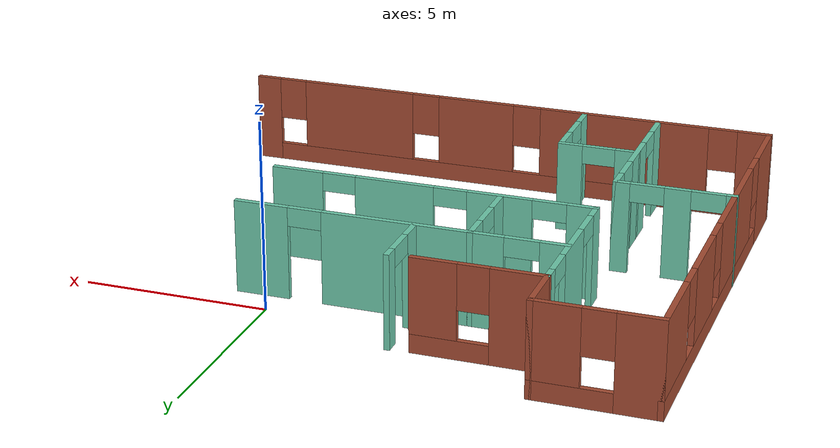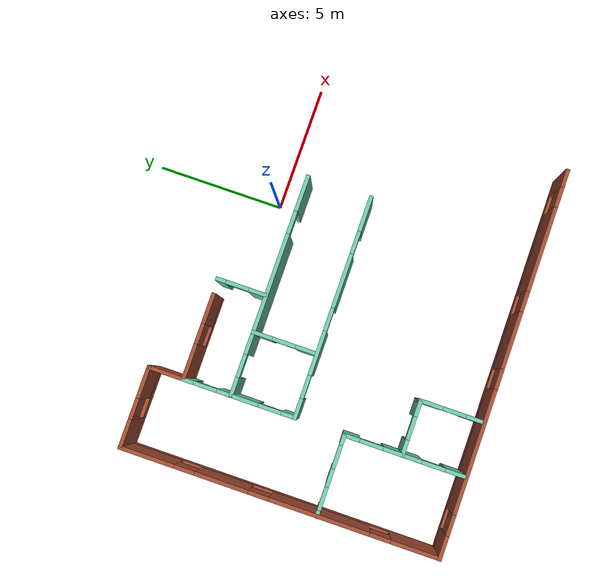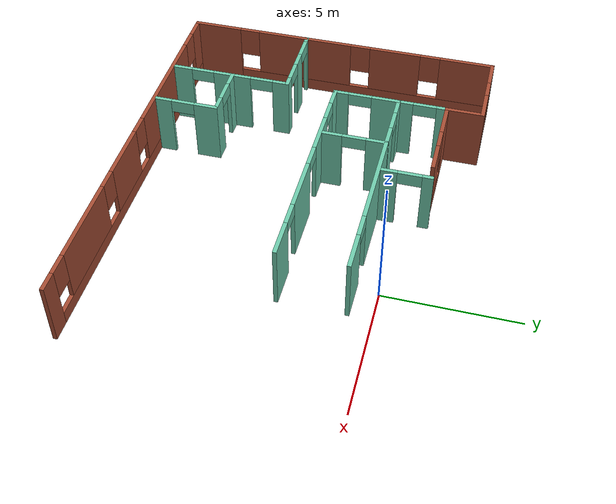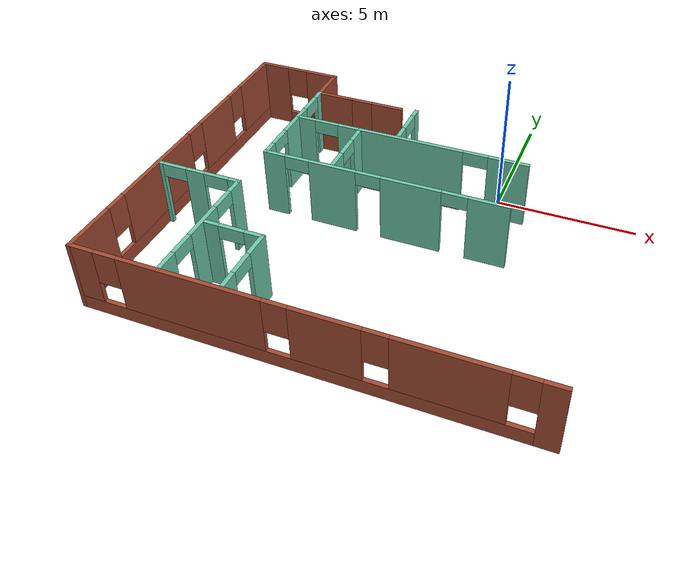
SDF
<sdf version="1.6">
 <model name="my_apartment">
  <pose>-3.10653 -3.79856 0 0 -0 0</pose>
  <link name="Wall_10">
   <pose>-2.79582 4.775 0 0 -0 0</pose>
   <visual name="Wall_10_Visual_0">
    <pose>-1.0014 0 1.25 0 -0 0</pose>
    <geometry><box><size>1.44721 0.15 2.5</size></box></geometry>
    <material>
     <script><uri>file://media/materials/scripts/gazebo.material</uri><name>Gazebo/Bricks</name></script>
     <ambient>0.435294 0.796078 0.67451 1</ambient>
    </material>
    <meta><layer>0</layer></meta>
   </visual>
   <collision name="Wall_10_Collision_0">
    <geometry><box><size>1.44721 0.15 2.5</size></box></geometry>
    <pose>-1.0014 0 1.25 0 -0 0</pose>
   </collision>
   <visual name="Wall_10_Visual_1">
    <pose>0.723602 0 0.25 0 -0 0</pose>
    <geometry><box><size>2.00279 0.15 0.5</size></box></geometry>
    <material>
     <script><uri>file://media/materials/scripts/gazebo.material</uri><name>Gazebo/Bricks</name></script>
     <ambient>0.435294 0.796078 0.67451 1</ambient>
    </material>
    <meta><layer>0</layer></meta>
   </visual>
   <collision name="Wall_10_Collision_1">
    <geometry><box><size>2.00279 0.15 0.5</size></box></geometry>
    <pose>0.723602 0 0.25 0 -0 0</pose>
   </collision>
   <visual name="Wall_10_Visual_2">
    <pose>1.1236 0 1.5 0 -0 0</pose>
    <geometry><box><size>1.2028 0.15 2</size></box></geometry>
    <material>
     <script><uri>file://media/materials/scripts/gazebo.material</uri><name>Gazebo/Bricks</name></script>
     <ambient>0.435294 0.796078 0.67451 1</ambient>
    </material>
    <meta><layer>0</layer></meta>
   </visual>
   <collision name="Wall_10_Collision_2">
    <geometry><box><size>1.2028 0.15 2</size></box></geometry>
    <pose>1.1236 0 1.5 0 -0 0</pose>
   </collision>
   <visual name="Wall_10_Visual_3">
    <pose>0.122205 0 1.9 0 -0 0</pose>
    <geometry><box><size>0.8 0.15 1.2</size></box></geometry>
    <material>
     <script><uri>file://media/materials/scripts/gazebo.material</uri><name>Gazebo/Bricks</name></script>
     <ambient>0.435294 0.796078 0.67451 1</ambient>
    </material>
    <meta><layer>0</layer></meta>
   </visual>
   <collision name="Wall_10_Collision_3">
    <geometry><box><size>0.8 0.15 1.2</size></box></geometry>
    <pose>0.122205 0 1.9 0 -0 0</pose>
   </collision>
  </link>
  <link name="Wall_12">
   <pose>-4.44565 2.59978 0 0 0 -1.57072</pose>
   <visual name="Wall_12_Visual_0">
    <pose>-2.01587 0 1.25 0 -0 0</pose>
    <geometry><box><size>0.468264 0.15 2.5</size></box></geometry>
    <material>
     <script><uri>file://media/materials/scripts/gazebo.material</uri><name>Gazebo/Grey</name></script>
     <ambient>0.435294 0.796078 0.67451 1</ambient>
    </material>
    <meta><layer>0</layer></meta>
   </visual>
   <collision name="Wall_12_Collision_0">
    <geometry><box><size>0.468264 0.15 2.5</size></box></geometry>
    <pose>-2.01587 0 1.25 0 -0 0</pose>
   </collision>
   <visual name="Wall_12_Visual_1">
    <pose>-0.071119 0 1.25 0 -0 0</pose>
    <geometry><box><size>1.62123 0.15 2.5</size></box></geometry>
    <material>
     <script><uri>file://media/materials/scripts/gazebo.material</uri><name>Gazebo/Grey</name></script>
     <ambient>0.435294 0.796078 0.67451 1</ambient>
    </material>
    <meta><layer>0</layer></meta>
   </visual>
   <collision name="Wall_12_Collision_1">
    <geometry><box><size>1.62123 0.15 2.5</size></box></geometry>
    <pose>-0.071119 0 1.25 0 -0 0</pose>
   </collision>
   <visual name="Wall_12_Visual_2">
    <pose>1.94475 0 1.25 0 -0 0</pose>
    <geometry><box><size>0.610503 0.15 2.5</size></box></geometry>
    <material>
     <script><uri>file://media/materials/scripts/gazebo.material</uri><name>Gazebo/Grey</name></script>
     <ambient>0.435294 0.796078 0.67451 1</ambient>
    </material>
    <meta><layer>0</layer></meta>
   </visual>
   <collision name="Wall_12_Collision_2">
    <geometry><box><size>0.610503 0.15 2.5</size></box></geometry>
    <pose>1.94475 0 1.25 0 -0 0</pose>
   </collision>
   <visual name="Wall_12_Visual_3">
    <pose>-1.33174 0 2.25 0 -0 0</pose>
    <geometry><box><size>0.9 0.15 0.5</size></box></geometry>
    <material>
     <script><uri>file://media/materials/scripts/gazebo.material</uri><name>Gazebo/Grey</name></script>
     <ambient>0.435294 0.796078 0.67451 1</ambient>
    </material>
    <meta><layer>0</layer></meta>
   </visual>
   <collision name="Wall_12_Collision_3">
    <geometry><box><size>0.9 0.15 0.5</size></box></geometry>
    <pose>-1.33174 0 2.25 0 -0 0</pose>
   </collision>
   <visual name="Wall_12_Visual_4">
    <pose>1.1895 0 2.25 0 -0 0</pose>
    <geometry><box><size>0.9 0.15 0.5</size></box></geometry>
    <material>
     <script><uri>file://media/materials/scripts/gazebo.material</uri><name>Gazebo/Grey</name></script>
     <ambient>0.435294 0.796078 0.67451 1</ambient>
    </material>
    <meta><layer>0</layer></meta>
   </visual>
   <collision name="Wall_12_Collision_4">
    <geometry><box><size>0.9 0.15 0.5</size></box></geometry>
    <pose>1.1895 0 2.25 0 -0 0</pose>
   </collision>
  </link>
  <link name="Wall_13">
   <pose>-0.120473 0.424565 0 0 -0 0</pose>
   <visual name="Wall_13_Visual_0">
    <pose>-3.99093 0 1.25 0 -0 0</pose>
    <geometry><box><size>0.818142 0.15 2.5</size></box></geometry>
    <material>
     <script><uri>file://media/materials/scripts/gazebo.material</uri><name>Gazebo/Grey</name></script>
     <ambient>0.435294 0.796078 0.67451 1</ambient>
    </material>
    <meta><layer>0</layer></meta>
   </visual>
   <collision name="Wall_13_Collision_0">
    <geometry><box><size>0.818142 0.15 2.5</size></box></geometry>
    <pose>-3.99093 0 1.25 0 -0 0</pose>
   </collision>
   <visual name="Wall_13_Visual_1">
    <pose>-1.8163 0 1.25 0 -0 0</pose>
    <geometry><box><size>1.73111 0.15 2.5</size></box></geometry>
    <material>
     <script><uri>file://media/materials/scripts/gazebo.material</uri><name>Gazebo/Grey</name></script>
     <ambient>0.435294 0.796078 0.67451 1</ambient>
    </material>
    <meta><layer>0</layer></meta>
   </visual>
   <collision name="Wall_13_Collision_1">
    <geometry><box><size>1.73111 0.15 2.5</size></box></geometry>
    <pose>-1.8163 0 1.25 0 -0 0</pose>
   </collision>
   <visual name="Wall_13_Visual_2">
    <pose>1.02013 0 1.25 0 -0 0</pose>
    <geometry><box><size>2.14175 0.15 2.5</size></box></geometry>
    <material>
     <script><uri>file://media/materials/scripts/gazebo.material</uri><name>Gazebo/Grey</name></script>
     <ambient>0.435294 0.796078 0.67451 1</ambient>
    </material>
    <meta><layer>0</layer></meta>
   </visual>
   <collision name="Wall_13_Collision_2">
    <geometry><box><size>2.14175 0.15 2.5</size></box></geometry>
    <pose>1.02013 0 1.25 0 -0 0</pose>
   </collision>
   <visual name="Wall_13_Visual_3">
    <pose>3.6955 0 1.25 0 -0 0</pose>
    <geometry><box><size>1.40899 0.15 2.5</size></box></geometry>
    <material>
     <script><uri>file://media/materials/scripts/gazebo.material</uri><name>Gazebo/Grey</name></script>
     <ambient>0.435294 0.796078 0.67451 1</ambient>
    </material>
    <meta><layer>0</layer></meta>
   </visual>
   <collision name="Wall_13_Collision_3">
    <geometry><box><size>1.40899 0.15 2.5</size></box></geometry>
    <pose>3.6955 0 1.25 0 -0 0</pose>
   </collision>
   <visual name="Wall_13_Visual_4">
    <pose>-3.13186 0 2.25 0 -0 0</pose>
    <geometry><box><size>0.9 0.15 0.5</size></box></geometry>
    <material>
     <script><uri>file://media/materials/scripts/gazebo.material</uri><name>Gazebo/Grey</name></script>
     <ambient>0.435294 0.796078 0.67451 1</ambient>
    </material>
    <meta><layer>0</layer></meta>
   </visual>
   <collision name="Wall_13_Collision_4">
    <geometry><box><size>0.9 0.15 0.5</size></box></geometry>
    <pose>-3.13186 0 2.25 0 -0 0</pose>
   </collision>
   <visual name="Wall_13_Visual_5">
    <pose>-0.500745 0 2.25 0 -0 0</pose>
    <geometry><box><size>0.9 0.15 0.5</size></box></geometry>
    <material>
     <script><uri>file://media/materials/scripts/gazebo.material</uri><name>Gazebo/Grey</name></script>
     <ambient>0.435294 0.796078 0.67451 1</ambient>
    </material>
    <meta><layer>0</layer></meta>
   </visual>
   <collision name="Wall_13_Collision_5">
    <geometry><box><size>0.9 0.15 0.5</size></box></geometry>
    <pose>-0.500745 0 2.25 0 -0 0</pose>
   </collision>
   <visual name="Wall_13_Visual_6">
    <pose>2.54101 0 2.25 0 -0 0</pose>
    <geometry><box><size>0.9 0.15 0.5</size></box></geometry>
    <material>
     <script><uri>file://media/materials/scripts/gazebo.material</uri><name>Gazebo/Grey</name></script>
     <ambient>0.435294 0.796078 0.67451 1</ambient>
    </material>
    <meta><layer>0</layer></meta>
   </visual>
   <collision name="Wall_13_Collision_6">
    <geometry><box><size>0.9 0.15 0.5</size></box></geometry>
    <pose>2.54101 0 2.25 0 -0 0</pose>
   </collision>
  </link>
  <link name="Wall_19">
   <pose>-0.118146 2.91521 0 0 -0 0</pose>
   <visual name="Wall_19_Visual_0">
    <pose>-3.9948 0 1.25 0 -0 0</pose>
    <geometry><box><size>0.760398 0.15 2.5</size></box></geometry>
    <material>
     <script><uri>file://media/materials/scripts/gazebo.material</uri><name>Gazebo/Grey</name></script>
     <ambient>0.435294 0.796078 0.67451 1</ambient>
    </material>
    <meta><layer>0</layer></meta>
   </visual>
   <collision name="Wall_19_Collision_0">
    <geometry><box><size>0.760398 0.15 2.5</size></box></geometry>
    <pose>-3.9948 0 1.25 0 -0 0</pose>
   </collision>
   <visual name="Wall_19_Visual_1">
    <pose>-0.343379 0 1.25 0 -0 0</pose>
    <geometry><box><size>4.74245 0.15 2.5</size></box></geometry>
    <material>
     <script><uri>file://media/materials/scripts/gazebo.material</uri><name>Gazebo/Grey</name></script>
     <ambient>0.435294 0.796078 0.67451 1</ambient>
    </material>
    <meta><layer>0</layer></meta>
   </visual>
   <collision name="Wall_19_Collision_1">
    <geometry><box><size>4.74245 0.15 2.5</size></box></geometry>
    <pose>-0.343379 0 1.25 0 -0 0</pose>
   </collision>
   <visual name="Wall_19_Visual_2">
    <pose>3.65142 0 1.25 0 -0 0</pose>
    <geometry><box><size>1.44716 0.15 2.5</size></box></geometry>
    <material>
     <script><uri>file://media/materials/scripts/gazebo.material</uri><name>Gazebo/Grey</name></script>
     <ambient>0.435294 0.796078 0.67451 1</ambient>
    </material>
    <meta><layer>0</layer></meta>
   </visual>
   <collision name="Wall_19_Collision_2">
    <geometry><box><size>1.44716 0.15 2.5</size></box></geometry>
    <pose>3.65142 0 1.25 0 -0 0</pose>
   </collision>
   <visual name="Wall_19_Visual_3">
    <pose>-3.1646 0 2.25 0 -0 0</pose>
    <geometry><box><size>0.9 0.15 0.5</size></box></geometry>
    <material>
     <script><uri>file://media/materials/scripts/gazebo.material</uri><name>Gazebo/Grey</name></script>
     <ambient>0.435294 0.796078 0.67451 1</ambient>
    </material>
    <meta><layer>0</layer></meta>
   </visual>
   <collision name="Wall_19_Collision_3">
    <geometry><box><size>0.9 0.15 0.5</size></box></geometry>
    <pose>-3.1646 0 2.25 0 -0 0</pose>
   </collision>
   <visual name="Wall_19_Visual_4">
    <pose>2.47784 0 2.25 0 -0 0</pose>
    <geometry><box><size>0.9 0.15 0.5</size></box></geometry>
    <material>
     <script><uri>file://media/materials/scripts/gazebo.material</uri><name>Gazebo/Grey</name></script>
     <ambient>0.435294 0.796078 0.67451 1</ambient>
    </material>
    <meta><layer>0</layer></meta>
   </visual>
   <collision name="Wall_19_Collision_4">
    <geometry><box><size>0.9 0.15 0.5</size></box></geometry>
    <pose>2.47784 0 2.25 0 -0 0</pose>
   </collision>
  </link>
  <link name="Wall_21">
   <pose>-1.97093 1.74021 0 0 0 -1.5708</pose>
   <visual name="Wall_21_Visual_0">
    <pose>-0.835388 0 1.25 0 -0 0</pose>
    <geometry><box><size>0.829225 0.15 2.5</size></box></geometry>
    <material>
     <script><uri>file://media/materials/scripts/gazebo.material</uri><name>Gazebo/Grey</name></script>
     <ambient>0.435294 0.796078 0.67451 1</ambient>
    </material>
    <meta><layer>0</layer></meta>
   </visual>
   <collision name="Wall_21_Collision_0">
    <geometry><box><size>0.829225 0.15 2.5</size></box></geometry>
    <pose>-0.835388 0 1.25 0 -0 0</pose>
   </collision>
   <visual name="Wall_21_Visual_1">
    <pose>0.864612 0 1.25 0 -0 0</pose>
    <geometry><box><size>0.770775 0.15 2.5</size></box></geometry>
    <material>
     <script><uri>file://media/materials/scripts/gazebo.material</uri><name>Gazebo/Grey</name></script>
     <ambient>0.435294 0.796078 0.67451 1</ambient>
    </material>
    <meta><layer>0</layer></meta>
   </visual>
   <collision name="Wall_21_Collision_1">
    <geometry><box><size>0.770775 0.15 2.5</size></box></geometry>
    <pose>0.864612 0 1.25 0 -0 0</pose>
   </collision>
   <visual name="Wall_21_Visual_2">
    <pose>0.029225 0 2.25 0 -0 0</pose>
    <geometry><box><size>0.9 0.15 0.5</size></box></geometry>
    <material>
     <script><uri>file://media/materials/scripts/gazebo.material</uri><name>Gazebo/Grey</name></script>
     <ambient>0.435294 0.796078 0.67451 1</ambient>
    </material>
    <meta><layer>0</layer></meta>
   </visual>
   <collision name="Wall_21_Collision_2">
    <geometry><box><size>0.9 0.15 0.5</size></box></geometry>
    <pose>0.029225 0 2.25 0 -0 0</pose>
   </collision>
  </link>
  <link name="Wall_25">
   <pose>-0.533187 3.90139 0 0 -0 1.5708</pose>
   <visual name="Wall_25_Visual_0">
    <pose>-0.652107 0 1.25 0 -0 0</pose>
    <geometry><box><size>0.695786 0.15 2.5</size></box></geometry>
    <material>
     <script><uri>file://media/materials/scripts/gazebo.material</uri><name>Gazebo/Grey</name></script>
     <ambient>0.435294 0.796078 0.67451 1</ambient>
    </material>
    <meta><layer>0</layer></meta>
   </visual>
   <collision name="Wall_25_Collision_0">
    <geometry><box><size>0.695786 0.15 2.5</size></box></geometry>
    <pose>-0.652107 0 1.25 0 -0 0</pose>
   </collision>
   <visual name="Wall_25_Visual_1">
    <pose>0.797893 0 1.25 0 -0 0</pose>
    <geometry><box><size>0.404214 0.15 2.5</size></box></geometry>
    <material>
     <script><uri>file://media/materials/scripts/gazebo.material</uri><name>Gazebo/Grey</name></script>
     <ambient>0.435294 0.796078 0.67451 1</ambient>
    </material>
    <meta><layer>0</layer></meta>
   </visual>
   <collision name="Wall_25_Collision_1">
    <geometry><box><size>0.404214 0.15 2.5</size></box></geometry>
    <pose>0.797893 0 1.25 0 -0 0</pose>
   </collision>
   <visual name="Wall_25_Visual_2">
    <pose>0.145786 0 2.25 0 -0 0</pose>
    <geometry><box><size>0.9 0.15 0.5</size></box></geometry>
    <material>
     <script><uri>file://media/materials/scripts/gazebo.material</uri><name>Gazebo/Grey</name></script>
     <ambient>0.435294 0.796078 0.67451 1</ambient>
    </material>
    <meta><layer>0</layer></meta>
   </visual>
   <collision name="Wall_25_Collision_2">
    <geometry><box><size>0.9 0.15 0.5</size></box></geometry>
    <pose>0.145786 0 2.25 0 -0 0</pose>
   </collision>
  </link>
  <link name="Wall_41">
   <pose>-6.00418 -1.50417 0 0 -0 0</pose>
   <visual name="Wall_41_Visual_0">
    <pose>-1.47711 0 1.25 0 -0 0</pose>
    <geometry><box><size>0.295788 0.15 2.5</size></box></geometry>
    <material>
     <script><uri>file://media/materials/scripts/gazebo.material</uri><name>Gazebo/Grey</name></script>
     <ambient>0.435294 0.796078 0.67451 1</ambient>
    </material>
    <meta><layer>0</layer></meta>
   </visual>
   <collision name="Wall_41_Collision_0">
    <geometry><box><size>0.295788 0.15 2.5</size></box></geometry>
    <pose>-1.47711 0 1.25 0 -0 0</pose>
   </collision>
   <visual name="Wall_41_Visual_1">
    <pose>-0.081206 0 1.25 0 -0 0</pose>
    <geometry><box><size>0.696012 0.15 2.5</size></box></geometry>
    <material>
     <script><uri>file://media/materials/scripts/gazebo.material</uri><name>Gazebo/Grey</name></script>
     <ambient>0.435294 0.796078 0.67451 1</ambient>
    </material>
    <meta><layer>0</layer></meta>
   </visual>
   <collision name="Wall_41_Collision_1">
    <geometry><box><size>0.696012 0.15 2.5</size></box></geometry>
    <pose>-0.081206 0 1.25 0 -0 0</pose>
   </collision>
   <visual name="Wall_41_Visual_2">
    <pose>1.3959 0 1.25 0 -0 0</pose>
    <geometry><box><size>0.4582 0.15 2.5</size></box></geometry>
    <material>
     <script><uri>file://media/materials/scripts/gazebo.material</uri><name>Gazebo/Grey</name></script>
     <ambient>0.435294 0.796078 0.67451 1</ambient>
    </material>
    <meta><layer>0</layer></meta>
   </visual>
   <collision name="Wall_41_Collision_2">
    <geometry><box><size>0.4582 0.15 2.5</size></box></geometry>
    <pose>1.3959 0 1.25 0 -0 0</pose>
   </collision>
   <visual name="Wall_41_Visual_3">
    <pose>-0.879212 0 2.25 0 -0 0</pose>
    <geometry><box><size>0.9 0.15 0.5</size></box></geometry>
    <material>
     <script><uri>file://media/materials/scripts/gazebo.material</uri><name>Gazebo/Grey</name></script>
     <ambient>0.435294 0.796078 0.67451 1</ambient>
    </material>
    <meta><layer>0</layer></meta>
   </visual>
   <collision name="Wall_41_Collision_3">
    <geometry><box><size>0.9 0.15 0.5</size></box></geometry>
    <pose>-0.879212 0 2.25 0 -0 0</pose>
   </collision>
   <visual name="Wall_41_Visual_4">
    <pose>0.7168 0 2.25 0 -0 0</pose>
    <geometry><box><size>0.9 0.15 0.5</size></box></geometry>
    <material>
     <script><uri>file://media/materials/scripts/gazebo.material</uri><name>Gazebo/Grey</name></script>
     <ambient>0.435294 0.796078 0.67451 1</ambient>
    </material>
    <meta><layer>0</layer></meta>
   </visual>
   <collision name="Wall_41_Collision_4">
    <geometry><box><size>0.9 0.15 0.5</size></box></geometry>
    <pose>0.7168 0 2.25 0 -0 0</pose>
   </collision>
  </link>
  <link name="Wall_42">
   <pose>-4.45418 -3.80417 0 0 0 -1.5708</pose>
   <visual name="Wall_42_Visual_0">
    <pose>-2.04206 0 1.25 0 -0 0</pose>
    <geometry><box><size>0.665877 0.15 2.5</size></box></geometry>
    <material>
     <script><uri>file://media/materials/scripts/gazebo.material</uri><name>Gazebo/Grey</name></script>
     <ambient>0.435294 0.796078 0.67451 1</ambient>
    </material>
    <meta><layer>0</layer></meta>
   </visual>
   <collision name="Wall_42_Collision_0">
    <geometry><box><size>0.665877 0.15 2.5</size></box></geometry>
    <pose>-2.04206 0 1.25 0 -0 0</pose>
   </collision>
   <visual name="Wall_42_Visual_1">
    <pose>-0.056331 0 1.25 0 -0 0</pose>
    <geometry><box><size>1.50558 0.15 2.5</size></box></geometry>
    <material>
     <script><uri>file://media/materials/scripts/gazebo.material</uri><name>Gazebo/Grey</name></script>
     <ambient>0.435294 0.796078 0.67451 1</ambient>
    </material>
    <meta><layer>0</layer></meta>
   </visual>
   <collision name="Wall_42_Collision_1">
    <geometry><box><size>1.50558 0.15 2.5</size></box></geometry>
    <pose>-0.056331 0 1.25 0 -0 0</pose>
   </collision>
   <visual name="Wall_42_Visual_2">
    <pose>1.98573 0 1.25 0 -0 0</pose>
    <geometry><box><size>0.778539 0.15 2.5</size></box></geometry>
    <material>
     <script><uri>file://media/materials/scripts/gazebo.material</uri><name>Gazebo/Grey</name></script>
     <ambient>0.435294 0.796078 0.67451 1</ambient>
    </material>
    <meta><layer>0</layer></meta>
   </visual>
   <collision name="Wall_42_Collision_2">
    <geometry><box><size>0.778539 0.15 2.5</size></box></geometry>
    <pose>1.98573 0 1.25 0 -0 0</pose>
   </collision>
   <visual name="Wall_42_Visual_3">
    <pose>-1.25912 0 2.25 0 -0 0</pose>
    <geometry><box><size>0.9 0.15 0.5</size></box></geometry>
    <material>
     <script><uri>file://media/materials/scripts/gazebo.material</uri><name>Gazebo/Grey</name></script>
     <ambient>0.435294 0.796078 0.67451 1</ambient>
    </material>
    <meta><layer>0</layer></meta>
   </visual>
   <collision name="Wall_42_Collision_3">
    <geometry><box><size>0.9 0.15 0.5</size></box></geometry>
    <pose>-1.25912 0 2.25 0 -0 0</pose>
   </collision>
   <visual name="Wall_42_Visual_4">
    <pose>1.14646 0 2.25 0 -0 0</pose>
    <geometry><box><size>0.9 0.15 0.5</size></box></geometry>
    <material>
     <script><uri>file://media/materials/scripts/gazebo.material</uri><name>Gazebo/Grey</name></script>
     <ambient>0.435294 0.796078 0.67451 1</ambient>
    </material>
    <meta><layer>0</layer></meta>
   </visual>
   <collision name="Wall_42_Collision_4">
    <geometry><box><size>0.9 0.15 0.5</size></box></geometry>
    <pose>1.14646 0 2.25 0 -0 0</pose>
   </collision>
  </link>
  <link name="Wall_44">
   <pose>-3.40468 -3.74784 0 0 -0 0</pose>
   <visual name="Wall_44_Visual_0">
    <pose>-0.792061 0 1.25 0 -0 0</pose>
    <geometry><box><size>0.665877 0.15 2.5</size></box></geometry>
    <material>
     <script><uri>file://media/materials/scripts/gazebo.material</uri><name>Gazebo/Grey</name></script>
     <ambient>0.435294 0.796078 0.67451 1</ambient>
    </material>
    <meta><layer>0</layer></meta>
   </visual>
   <collision name="Wall_44_Collision_0">
    <geometry><box><size>0.665877 0.15 2.5</size></box></geometry>
    <pose>-0.792061 0 1.25 0 -0 0</pose>
   </collision>
   <visual name="Wall_44_Visual_1">
    <pose>0.782939 0 1.25 0 -0 0</pose>
    <geometry><box><size>0.684123 0.15 2.5</size></box></geometry>
    <material>
     <script><uri>file://media/materials/scripts/gazebo.material</uri><name>Gazebo/Grey</name></script>
     <ambient>0.435294 0.796078 0.67451 1</ambient>
    </material>
    <meta><layer>0</layer></meta>
   </visual>
   <collision name="Wall_44_Collision_1">
    <geometry><box><size>0.684123 0.15 2.5</size></box></geometry>
    <pose>0.782939 0 1.25 0 -0 0</pose>
   </collision>
   <visual name="Wall_44_Visual_2">
    <pose>-0.009123 0 2.25 0 -0 0</pose>
    <geometry><box><size>0.9 0.15 0.5</size></box></geometry>
    <material>
     <script><uri>file://media/materials/scripts/gazebo.material</uri><name>Gazebo/Grey</name></script>
     <ambient>0.435294 0.796078 0.67451 1</ambient>
    </material>
    <meta><layer>0</layer></meta>
   </visual>
   <collision name="Wall_44_Collision_2">
    <geometry><box><size>0.9 0.15 0.5</size></box></geometry>
    <pose>-0.009123 0 2.25 0 -0 0</pose>
   </collision>
  </link>
  <link name="Wall_45">
   <pose>-2.35468 -4.92284 0 0 0 -1.5708</pose>
   <visual name="Wall_45_Visual_0">
    <pose>-0.778277 0 1.25 0 -0 0</pose>
    <geometry><box><size>0.943445 0.15 2.5</size></box></geometry>
    <material>
     <script><uri>file://media/materials/scripts/gazebo.material</uri><name>Gazebo/Grey</name></script>
     <ambient>0.435294 0.796078 0.67451 1</ambient>
    </material>
    <meta><layer>0</layer></meta>
   </visual>
   <collision name="Wall_45_Collision_0">
    <geometry><box><size>0.943445 0.15 2.5</size></box></geometry>
    <pose>-0.778277 0 1.25 0 -0 0</pose>
   </collision>
   <visual name="Wall_45_Visual_1">
    <pose>0.921723 0 1.25 0 -0 0</pose>
    <geometry><box><size>0.656555 0.15 2.5</size></box></geometry>
    <material>
     <script><uri>file://media/materials/scripts/gazebo.material</uri><name>Gazebo/Grey</name></script>
     <ambient>0.435294 0.796078 0.67451 1</ambient>
    </material>
    <meta><layer>0</layer></meta>
   </visual>
   <collision name="Wall_45_Collision_1">
    <geometry><box><size>0.656555 0.15 2.5</size></box></geometry>
    <pose>0.921723 0 1.25 0 -0 0</pose>
   </collision>
   <visual name="Wall_45_Visual_2">
    <pose>0.143445 0 2.25 0 -0 0</pose>
    <geometry><box><size>0.9 0.15 0.5</size></box></geometry>
    <material>
     <script><uri>file://media/materials/scripts/gazebo.material</uri><name>Gazebo/Grey</name></script>
     <ambient>0.435294 0.796078 0.67451 1</ambient>
    </material>
    <meta><layer>0</layer></meta>
   </visual>
   <collision name="Wall_45_Collision_2">
    <geometry><box><size>0.9 0.15 0.5</size></box></geometry>
    <pose>0.143445 0 2.25 0 -0 0</pose>
   </collision>
  </link>
  <link name="Wall_6">
   <pose>0.004176 -6.225 0 0 -0 3.14159</pose>
   <visual name="Wall_6_Visual_0">
    <pose>-7.26503 0 1.25 0 -0 0</pose>
    <geometry><box><size>0.719944 0.15 2.5</size></box></geometry>
    <material>
     <script><uri>file://media/materials/scripts/gazebo.material</uri><name>Gazebo/Bricks</name></script>
     <ambient>0.435294 0.796078 0.67451 1</ambient>
    </material>
    <meta><layer>0</layer></meta>
   </visual>
   <collision name="Wall_6_Collision_0">
    <geometry><box><size>0.719944 0.15 2.5</size></box></geometry>
    <pose>-7.26503 0 1.25 0 -0 0</pose>
   </collision>
   <visual name="Wall_6_Visual_1">
    <pose>0.359972 0 0.25 0 -0 0</pose>
    <geometry><box><size>14.5301 0.15 0.5</size></box></geometry>
    <material>
     <script><uri>file://media/materials/scripts/gazebo.material</uri><name>Gazebo/Bricks</name></script>
     <ambient>0.435294 0.796078 0.67451 1</ambient>
    </material>
    <meta><layer>0</layer></meta>
   </visual>
   <collision name="Wall_6_Collision_1">
    <geometry><box><size>14.5301 0.15 0.5</size></box></geometry>
    <pose>0.359972 0 0.25 0 -0 0</pose>
   </collision>
   <visual name="Wall_6_Visual_2">
    <pose>-4.43487 0 1.5 0 -0 0</pose>
    <geometry><box><size>3.34038 0.15 2</size></box></geometry>
    <material>
     <script><uri>file://media/materials/scripts/gazebo.material</uri><name>Gazebo/Bricks</name></script>
     <ambient>0.435294 0.796078 0.67451 1</ambient>
    </material>
    <meta><layer>0</layer></meta>
   </visual>
   <collision name="Wall_6_Collision_2">
    <geometry><box><size>3.34038 0.15 2</size></box></geometry>
    <pose>-4.43487 0 1.5 0 -0 0</pose>
   </collision>
   <visual name="Wall_6_Visual_3">
    <pose>-0.849622 0 1.5 0 -0 0</pose>
    <geometry><box><size>2.23011 0.15 2</size></box></geometry>
    <material>
     <script><uri>file://media/materials/scripts/gazebo.material</uri><name>Gazebo/Bricks</name></script>
     <ambient>0.435294 0.796078 0.67451 1</ambient>
    </material>
    <meta><layer>0</layer></meta>
   </visual>
   <collision name="Wall_6_Collision_3">
    <geometry><box><size>2.23011 0.15 2</size></box></geometry>
    <pose>-0.849622 0 1.5 0 -0 0</pose>
   </collision>
   <visual name="Wall_6_Visual_4">
    <pose>3.4758 0 1.5 0 -0 0</pose>
    <geometry><box><size>4.82074 0.15 2</size></box></geometry>
    <material>
     <script><uri>file://media/materials/scripts/gazebo.material</uri><name>Gazebo/Bricks</name></script>
     <ambient>0.435294 0.796078 0.67451 1</ambient>
    </material>
    <meta><layer>0</layer></meta>
   </visual>
   <collision name="Wall_6_Collision_4">
    <geometry><box><size>4.82074 0.15 2</size></box></geometry>
    <pose>3.4758 0 1.5 0 -0 0</pose>
   </collision>
   <visual name="Wall_6_Visual_5">
    <pose>7.15559 0 1.5 0 -0 0</pose>
    <geometry><box><size>0.93883 0.15 2</size></box></geometry>
    <material>
     <script><uri>file://media/materials/scripts/gazebo.material</uri><name>Gazebo/Bricks</name></script>
     <ambient>0.435294 0.796078 0.67451 1</ambient>
    </material>
    <meta><layer>0</layer></meta>
   </visual>
   <collision name="Wall_6_Collision_5">
    <geometry><box><size>0.93883 0.15 2</size></box></geometry>
    <pose>7.15559 0 1.5 0 -0 0</pose>
   </collision>
   <visual name="Wall_6_Visual_6">
    <pose>-6.50506 0 1.9 0 -0 0</pose>
    <geometry><box><size>0.8 0.15 1.2</size></box></geometry>
    <material>
     <script><uri>file://media/materials/scripts/gazebo.material</uri><name>Gazebo/Bricks</name></script>
     <ambient>0.435294 0.796078 0.67451 1</ambient>
    </material>
    <meta><layer>0</layer></meta>
   </visual>
   <collision name="Wall_6_Collision_6">
    <geometry><box><size>0.8 0.15 1.2</size></box></geometry>
    <pose>-6.50506 0 1.9 0 -0 0</pose>
   </collision>
   <visual name="Wall_6_Visual_7">
    <pose>-2.36468 0 1.9 0 -0 0</pose>
    <geometry><box><size>0.8 0.15 1.2</size></box></geometry>
    <material>
     <script><uri>file://media/materials/scripts/gazebo.material</uri><name>Gazebo/Bricks</name></script>
     <ambient>0.435294 0.796078 0.67451 1</ambient>
    </material>
    <meta><layer>0</layer></meta>
   </visual>
   <collision name="Wall_6_Collision_7">
    <geometry><box><size>0.8 0.15 1.2</size></box></geometry>
    <pose>-2.36468 0 1.9 0 -0 0</pose>
   </collision>
   <visual name="Wall_6_Visual_8">
    <pose>0.665433 0 1.9 0 -0 0</pose>
    <geometry><box><size>0.8 0.15 1.2</size></box></geometry>
    <material>
     <script><uri>file://media/materials/scripts/gazebo.material</uri><name>Gazebo/Bricks</name></script>
     <ambient>0.435294 0.796078 0.67451 1</ambient>
    </material>
    <meta><layer>0</layer></meta>
   </visual>
   <collision name="Wall_6_Collision_8">
    <geometry><box><size>0.8 0.15 1.2</size></box></geometry>
    <pose>0.665433 0 1.9 0 -0 0</pose>
   </collision>
   <visual name="Wall_6_Visual_9">
    <pose>6.28617 0 1.9 0 -0 0</pose>
    <geometry><box><size>0.8 0.15 1.2</size></box></geometry>
    <material>
     <script><uri>file://media/materials/scripts/gazebo.material</uri><name>Gazebo/Bricks</name></script>
     <ambient>0.435294 0.796078 0.67451 1</ambient>
    </material>
    <meta><layer>0</layer></meta>
   </visual>
   <collision name="Wall_6_Collision_9">
    <geometry><box><size>0.8 0.15 1.2</size></box></geometry>
    <pose>6.28617 0 1.9 0 -0 0</pose>
   </collision>
  </link>
  <link name="Wall_7">
   <pose>-7.54582 -0.05 0 0 -0 1.5708</pose>
   <visual name="Wall_7_Visual_0">
    <pose>-5.26644 0 1.25 0 -0 0</pose>
    <geometry><box><size>1.96711 0.15 2.5</size></box></geometry>
    <material>
     <script><uri>file://media/materials/scripts/gazebo.material</uri><name>Gazebo/Bricks</name></script>
     <ambient>0.435294 0.796078 0.67451 1</ambient>
    </material>
    <meta><layer>0</layer></meta>
   </visual>
   <collision name="Wall_7_Collision_0">
    <geometry><box><size>1.96711 0.15 2.5</size></box></geometry>
    <pose>-5.26644 0 1.25 0 -0 0</pose>
   </collision>
   <visual name="Wall_7_Visual_1">
    <pose>0.983556 0 0.25 0 -0 0</pose>
    <geometry><box><size>10.5329 0.15 0.5</size></box></geometry>
    <material>
     <script><uri>file://media/materials/scripts/gazebo.material</uri><name>Gazebo/Bricks</name></script>
     <ambient>0.435294 0.796078 0.67451 1</ambient>
    </material>
    <meta><layer>0</layer></meta>
   </visual>
   <collision name="Wall_7_Collision_1">
    <geometry><box><size>10.5329 0.15 0.5</size></box></geometry>
    <pose>0.983556 0 0.25 0 -0 0</pose>
   </collision>
   <visual name="Wall_7_Visual_2">
    <pose>-1.53513 0 1.5 0 -0 0</pose>
    <geometry><box><size>3.89551 0.15 2</size></box></geometry>
    <material>
     <script><uri>file://media/materials/scripts/gazebo.material</uri><name>Gazebo/Bricks</name></script>
     <ambient>0.435294 0.796078 0.67451 1</ambient>
    </material>
    <meta><layer>0</layer></meta>
   </visual>
   <collision name="Wall_7_Collision_2">
    <geometry><box><size>3.89551 0.15 2</size></box></geometry>
    <pose>-1.53513 0 1.5 0 -0 0</pose>
   </collision>
   <visual name="Wall_7_Visual_3">
    <pose>2.24672 0 1.5 0 -0 0</pose>
    <geometry><box><size>2.06819 0.15 2</size></box></geometry>
    <material>
     <script><uri>file://media/materials/scripts/gazebo.material</uri><name>Gazebo/Bricks</name></script>
     <ambient>0.435294 0.796078 0.67451 1</ambient>
    </material>
    <meta><layer>0</layer></meta>
   </visual>
   <collision name="Wall_7_Collision_3">
    <geometry><box><size>2.06819 0.15 2</size></box></geometry>
    <pose>2.24672 0 1.5 0 -0 0</pose>
   </collision>
   <visual name="Wall_7_Visual_4">
    <pose>5.16541 0 1.5 0 -0 0</pose>
    <geometry><box><size>2.16918 0.15 2</size></box></geometry>
    <material>
     <script><uri>file://media/materials/scripts/gazebo.material</uri><name>Gazebo/Bricks</name></script>
     <ambient>0.435294 0.796078 0.67451 1</ambient>
    </material>
    <meta><layer>0</layer></meta>
   </visual>
   <collision name="Wall_7_Collision_4">
    <geometry><box><size>2.16918 0.15 2</size></box></geometry>
    <pose>5.16541 0 1.5 0 -0 0</pose>
   </collision>
   <visual name="Wall_7_Visual_5">
    <pose>-3.88289 0 1.9 0 -0 0</pose>
    <geometry><box><size>0.8 0.15 1.2</size></box></geometry>
    <material>
     <script><uri>file://media/materials/scripts/gazebo.material</uri><name>Gazebo/Bricks</name></script>
     <ambient>0.435294 0.796078 0.67451 1</ambient>
    </material>
    <meta><layer>0</layer></meta>
   </visual>
   <collision name="Wall_7_Collision_5">
    <geometry><box><size>0.8 0.15 1.2</size></box></geometry>
    <pose>-3.88289 0 1.9 0 -0 0</pose>
   </collision>
   <visual name="Wall_7_Visual_6">
    <pose>0.812626 0 1.9 0 -0 0</pose>
    <geometry><box><size>0.8 0.15 1.2</size></box></geometry>
    <material>
     <script><uri>file://media/materials/scripts/gazebo.material</uri><name>Gazebo/Bricks</name></script>
     <ambient>0.435294 0.796078 0.67451 1</ambient>
    </material>
    <meta><layer>0</layer></meta>
   </visual>
   <collision name="Wall_7_Collision_6">
    <geometry><box><size>0.8 0.15 1.2</size></box></geometry>
    <pose>0.812626 0 1.9 0 -0 0</pose>
   </collision>
   <visual name="Wall_7_Visual_7">
    <pose>3.68082 0 1.9 0 -0 0</pose>
    <geometry><box><size>0.8 0.15 1.2</size></box></geometry>
    <material>
     <script><uri>file://media/materials/scripts/gazebo.material</uri><name>Gazebo/Bricks</name></script>
     <ambient>0.435294 0.796078 0.67451 1</ambient>
    </material>
    <meta><layer>0</layer></meta>
   </visual>
   <collision name="Wall_7_Collision_7">
    <geometry><box><size>0.8 0.15 1.2</size></box></geometry>
    <pose>3.68082 0 1.9 0 -0 0</pose>
   </collision>
  </link>
  <link name="Wall_8">
   <pose>-5.99582 6.125 0 0 -0 0</pose>
   <visual name="Wall_8_Visual_0">
    <pose>-1.03993 0 1.25 0 -0 0</pose>
    <geometry><box><size>1.17014 0.15 2.5</size></box></geometry>
    <material>
     <script><uri>file://media/materials/scripts/gazebo.material</uri><name>Gazebo/Bricks</name></script>
     <ambient>0.435294 0.796078 0.67451 1</ambient>
    </material>
    <meta><layer>0</layer></meta>
   </visual>
   <collision name="Wall_8_Collision_0">
    <geometry><box><size>1.17014 0.15 2.5</size></box></geometry>
    <pose>-1.03993 0 1.25 0 -0 0</pose>
   </collision>
   <visual name="Wall_8_Visual_1">
    <pose>0.585068 0 0.25 0 -0 0</pose>
    <geometry><box><size>2.07986 0.15 0.5</size></box></geometry>
    <material>
     <script><uri>file://media/materials/scripts/gazebo.material</uri><name>Gazebo/Bricks</name></script>
     <ambient>0.435294 0.796078 0.67451 1</ambient>
    </material>
    <meta><layer>0</layer></meta>
   </visual>
   <collision name="Wall_8_Collision_1">
    <geometry><box><size>2.07986 0.15 0.5</size></box></geometry>
    <pose>0.585068 0 0.25 0 -0 0</pose>
   </collision>
   <visual name="Wall_8_Visual_2">
    <pose>0.985068 0 1.5 0 -0 0</pose>
    <geometry><box><size>1.27986 0.15 2</size></box></geometry>
    <material>
     <script><uri>file://media/materials/scripts/gazebo.material</uri><name>Gazebo/Bricks</name></script>
     <ambient>0.435294 0.796078 0.67451 1</ambient>
    </material>
    <meta><layer>0</layer></meta>
   </visual>
   <collision name="Wall_8_Collision_2">
    <geometry><box><size>1.27986 0.15 2</size></box></geometry>
    <pose>0.985068 0 1.5 0 -0 0</pose>
   </collision>
   <visual name="Wall_8_Visual_3">
    <pose>-0.054864 0 1.9 0 -0 0</pose>
    <geometry><box><size>0.8 0.15 1.2</size></box></geometry>
    <material>
     <script><uri>file://media/materials/scripts/gazebo.material</uri><name>Gazebo/Bricks</name></script>
     <ambient>0.435294 0.796078 0.67451 1</ambient>
    </material>
    <meta><layer>0</layer></meta>
   </visual>
   <collision name="Wall_8_Collision_3">
    <geometry><box><size>0.8 0.15 1.2</size></box></geometry>
    <pose>-0.054864 0 1.9 0 -0 0</pose>
   </collision>
  </link>
  <link name="Wall_9">
   <collision name="Wall_9_Collision">
    <geometry><box><size>1.5 0.15 2.5</size></box></geometry>
    <pose>0 0 1.25 0 -0 0</pose>
   </collision>
   <visual name="Wall_9_Visual">
    <pose>0 0 1.25 0 -0 0</pose>
    <geometry><box><size>1.5 0.15 2.5</size></box></geometry>
    <material>
     <script><uri>file://media/materials/scripts/gazebo.material</uri><name>Gazebo/Bricks</name></script>
     <ambient>1 1 1 1</ambient>
    </material>
    <meta><layer>0</layer></meta>
   </visual>
   <pose>-4.44582 5.45 0 0 0 -1.5708</pose>
  </link>
  <static>1</static>
 </model>
</sdf>
